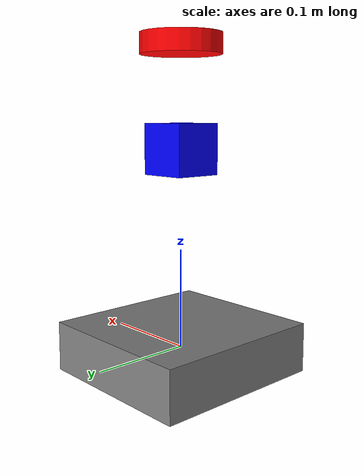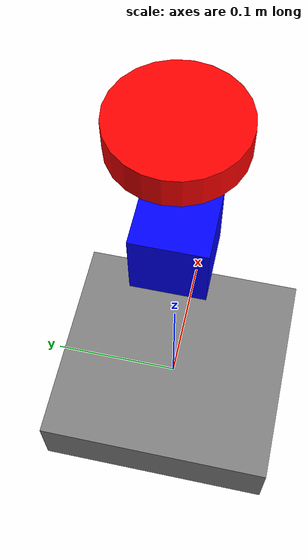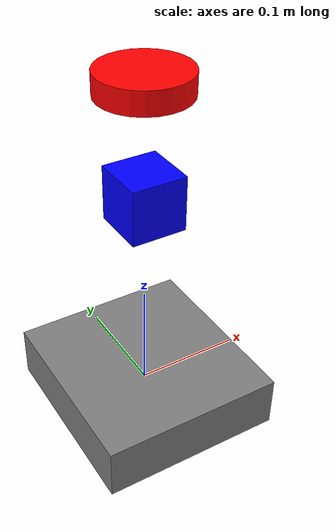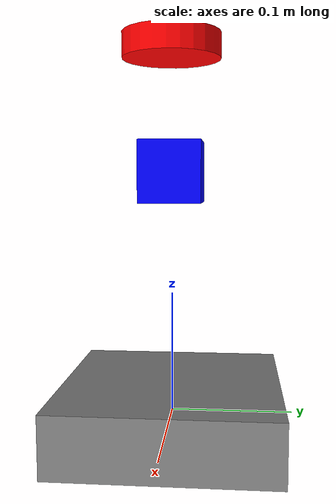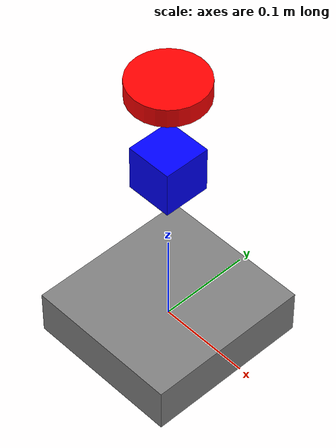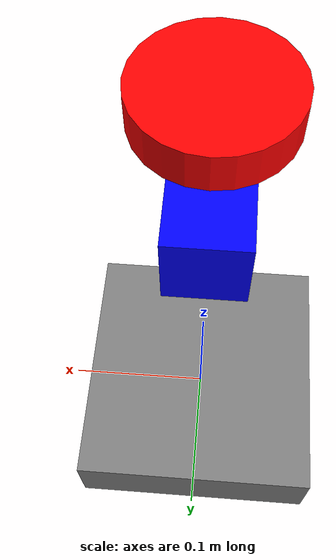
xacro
<?xml version="1.0"?>
<robot xmlns:xacro="http://ros.org/wiki/xacro" name="my_robot">

  <!-- Define some simple properties -->
  <xacro:property name="base_length" value="0.17"/>  <!-- meters -->
  <xacro:property name="base_width" value="0.18"/>   <!-- meters -->
  <xacro:property name="base_height" value="0.05"/>  <!-- meters -->
  <xacro:property name="lidar_height" value="0.15"/> <!-- meters -->
  <xacro:property name="camera_height" value="0.10"/> <!-- meters -->

  <!-- Base Link -->
  <link name="base_link">
    <visual>
      <geometry>
        <box size="${base_length} ${base_width} ${base_height}"/>
      </geometry>
      <material name="Gray">
        <color rgba="0.5 0.5 0.5 1.0"/>
      </material>
    </visual>
  </link>

  <!-- Lidar Link -->
  <link name="lidar_link">
    <visual>
      <geometry>
        <cylinder radius="0.04" length="0.02"/>
      </geometry>
      <origin xyz="0.0 0.0 ${lidar_height}" rpy="0 0 0"/>
      <material name="Red">
        <color rgba="1.0 0.0 0.0 1.0"/>
      </material>
    </visual>
  </link>

  <!-- Camera Link -->
  <link name="camera_link">
    <visual>
      <geometry>
        <box size="0.05 0.05 0.05"/>
      </geometry>
      <origin xyz="0.0 0.0 ${camera_height}" rpy="0 0 0"/>
      <material name="Blue">
        <color rgba="0.0 0.0 1.0 1.0"/>
      </material>
    </visual>
  </link>

  <!-- Joints -->

  <!-- Lidar Joint -->
  <joint name="lidar_joint" type="fixed">
    <parent link="base_link"/>
    <child link="lidar_link"/>
    <origin xyz="0.0 0.0 ${lidar_height}" rpy="0 0 0"/>
  </joint>

  <!-- Camera Joint -->
  <joint name="camera_joint" type="fixed">
    <parent link="base_link"/>
    <child link="camera_link"/>
    <origin xyz="0.0 0.0 ${camera_height}" rpy="0 0 0"/>
  </joint>

</robot>
